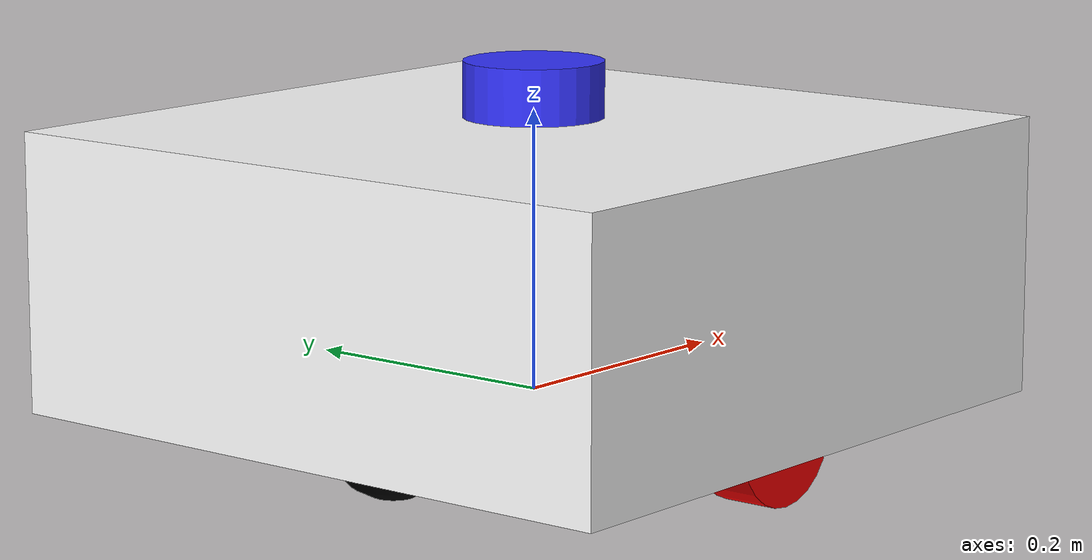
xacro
<?xml version="1.0"?>
<robot xmlns:xacro="http://www.ros.org/wiki/xacro"  name="robot">

    <xacro:arg name="use_ros2_control" default="true"/>
    <xacro:arg name="sim_mode" default="false"/>

    <xacro:include filename="bentuk_robot.xacro" />

    <xacro:if value="$(arg use_ros2_control)">
        <xacro:include filename="ros2_control.xacro" />
    </xacro:if>
    <xacro:unless value="$(arg use_ros2_control)">
        <xacro:include filename="gazebo_control.xacro" />
    </xacro:unless>

    <xacro:include filename="lidar.xacro" />

</robot>

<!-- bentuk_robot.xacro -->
<robot xmlns:xacro="http://www.ros.org/wiki/xacro">

    <xacro:include filename="inertial_macros.xacro"/>

    <xacro:property name="chassis_length" value="0.5"/>
    <xacro:property name="chassis_width" value="0.5"/>
    <xacro:property name="chassis_height" value="0.2"/>
    <xacro:property name="chassis_mass" value="1.0"/>
    <xacro:property name="wheel_radius" value="0.05"/>
    <xacro:property name="wheel_thickness" value="0.04"/>
    <xacro:property name="wheel_mass" value="0.1"/>
    <xacro:property name="wheel_offset_x" value="0.25"/>
    <xacro:property name="wheel_offset_y" value="0.2"/>
    <xacro:property name="wheel_offset_z" value="0.01"/>
    <xacro:property name="caster_wheel_radius" value="0.05"/>
    <xacro:property name="caster_wheel_mass" value="0.01"/>
    <xacro:property name="caster_wheel_f_offset_x" value="0.4"/>
    <xacro:property name="caster_wheel_b_offset_x" value="0.1"/>
    <xacro:property name="caster_wheel_offset_z" value="${wheel_offset_z - wheel_radius + caster_wheel_radius}"/>

    <material name="white">
        <color rgba="1 1 1 1" />
    </material>

    <material name="red">
        <color rgba="1 0 0 1"/>
    </material>

    <material name="blue">
        <color rgba="0.2 0.2 1 1"/>
    </material>

    <material name="black">
        <color rgba="0 0 0 1"/>
    </material>

    <!-- BASE LINK -->

    <link name="base_link">

    </link>

    <!-- BASE_FOOTPRINT LINK -->

    <joint name="base_footprint_joint" type="fixed">
        <parent link="base_link"/>
        <child link="base_footprint"/>
        <origin xyz="0 0 0" rpy="0 0 0"/>
    </joint>

    <link name="base_footprint">
    </link>

    <!-- CHASSIS LINK -->

    <joint name="chassis_joint" type="fixed">
        <parent link="base_link"/>
        <child link="chassis"/>
        <origin xyz="${-wheel_offset_x} 0 ${-wheel_offset_z}"/>
    </joint>

    <link name="chassis">
        <visual>
            <origin xyz="${chassis_length/2} 0 ${chassis_height/2}"/>
            <geometry>
                <box size="${chassis_length} ${chassis_width} ${chassis_height}"/>
            </geometry>
            <material name="white"/>
        </visual>
        <collision>
            <origin xyz="${chassis_length/2} 0 ${chassis_height/2}"/>
            <geometry>
                <box size="${chassis_length} ${chassis_width} ${chassis_height}"/>
            </geometry>
        </collision>
        <xacro:inertial_box mass="0.5" x="${chassis_length}" y="${chassis_width}" z="${chassis_height}" >
            <origin xyz="${chassis_length/2} 0 ${chassis_height/2}" rpy="0 0 0"/>
        </xacro:inertial_box>
    </link>

    <gazebo reference="chassis">
        <material>Gazebo/White</material>
    </gazebo>

    <!-- LEFT WHEEL LINK -->

    <joint name="left_wheel_joint" type="continuous">
        <parent link="base_link"/>
        <child link="left_wheel"/>
        <origin xyz="0 ${wheel_offset_y} 0" rpy="-${pi/2} 0 0" />
        <axis xyz="0 0 1"/>
    </joint>

    <link name="left_wheel">
        <visual>
            <geometry>
                <cylinder radius="${wheel_radius}" length="${wheel_thickness}"/>
            </geometry>
            <material name="red"/>
        </visual>
        <collision>
            <geometry>
                <sphere radius="${wheel_radius}"/>
            </geometry>
        </collision>
        <xacro:inertial_cylinder mass="${wheel_mass}" length="${wheel_thickness}" radius="${wheel_radius}">
            <origin xyz="0 0 0" rpy="0 0 0"/>
        </xacro:inertial_cylinder>
    </link>

    <gazebo reference="left_wheel">
        <material>Gazebo/Red</material>
    </gazebo>

    <!-- RIGHT WHEEL LINK -->

    <joint name="right_wheel_joint" type="continuous">
        <parent link="base_link"/>
        <child link="right_wheel"/>
        <origin xyz="0 ${-wheel_offset_y} 0" rpy="${pi/2} 0 0" />
        <axis xyz="0 0 -1"/>
    </joint>

    <link name="right_wheel">
        <visual>
            <geometry>
                <cylinder radius="${wheel_radius}" length="${wheel_thickness}"/>
            </geometry>
            <material name="red"/>
        </visual>
        <collision>
            <geometry>
                <sphere radius="${wheel_radius}"/>
            </geometry>
        </collision>
        <xacro:inertial_cylinder mass="${wheel_mass}" length="${wheel_thickness}" radius="${wheel_radius}">
            <origin xyz="0 0 0" rpy="0 0 0"/>
        </xacro:inertial_cylinder>
    </link>

    <gazebo reference="right_wheel">
        <material>Gazebo/Red</material>
    </gazebo>

    <!-- CASTER WHEEL F LINK -->

    <joint name="caster_wheel_f_joint" type="fixed">
        <parent link="chassis"/>
        <child link="caster_wheel_f"/>
        <origin xyz="${caster_wheel_f_offset_x} 0 ${caster_wheel_offset_z}"/>
    </joint>

    <link name="caster_wheel_f">
        <visual>
            <geometry>
                <sphere radius="${caster_wheel_radius}"/>
            </geometry>
            <material name="black"/>
        </visual>
        <collision>
            <geometry>
                <sphere radius="${caster_wheel_radius}"/>
            </geometry>
        </collision>
        <xacro:inertial_sphere mass="${caster_wheel_mass}" radius="${caster_wheel_radius}">
            <origin xyz="0 0 0" rpy="0 0 0"/>
        </xacro:inertial_sphere>
    </link>
    <gazebo reference="caster_wheel_f">
        <material>Gazebo/Black</material>
        <mu1 value="0.001"/>
        <mu2 value="0.001"/>
    </gazebo>

    <!-- CASTER WHEEL B LINK -->

    <joint name="caster_wheel_b_joint" type="fixed">
        <parent link="chassis"/>
        <child link="caster_wheel_b"/>
        <origin xyz="${caster_wheel_b_offset_x} 0 ${caster_wheel_offset_z}"/>
    </joint>

    <link name="caster_wheel_b">
        <visual>
            <geometry>
                <sphere radius="${caster_wheel_radius}"/>
            </geometry>
            <material name="black"/>
        </visual>
        <collision>
            <geometry>
                <sphere radius="${caster_wheel_radius}"/>
            </geometry>
        </collision>
        <xacro:inertial_sphere mass="${caster_wheel_mass}" radius="${caster_wheel_radius}">
            <origin xyz="0 0 0" rpy="0 0 0"/>
        </xacro:inertial_sphere>
    </link>
    <gazebo reference="caster_wheel_b">
        <material>Gazebo/Black</material>
        <mu1 value="0.001"/>
        <mu2 value="0.001"/>
    </gazebo>

</robot>

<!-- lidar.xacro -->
<robot xmlns:xacro="http://www.ros.org/wiki/xacro"  name="robot">

    <joint name="laser_joint" type="fixed">
        <parent link="chassis"/>
        <child link="laser_frame"/>
        <origin xyz="0.25 0 0.225" rpy="0 0 0"/>
    </joint>

    <link name="laser_frame">
        <visual>
            <geometry>
                <cylinder radius="0.05" length="0.04"/>
            </geometry>
            <material name="blue"/>
        </visual>
        <collision>
            <geometry>
                <cylinder radius="0.05" length="0.04"/>
            </geometry>
        </collision>
        <xacro:inertial_cylinder mass="0.1" length="0.04" radius="0.05">
            <origin xyz="0 0 0" rpy="0 0 0"/>
        </xacro:inertial_cylinder>
    </link>

    <gazebo reference="laser_frame">
        <material>Gazebo/Blue</material>

        <sensor name="laser" type="ray">
            <pose> 0 0 0 0 0 0 </pose>
            <visualize>true</visualize>
            <update_rate>10</update_rate>
            <ray>
                <scan>
                    <horizontal>
                        <samples>360</samples>
                        <min_angle>-3.14</min_angle>
                        <max_angle>3.14</max_angle>
                    </horizontal>
                </scan>
                <range>
                    <min>0.3</min>
                    <max>12</max>
                </range>
            </ray>
            <plugin name="laser_controller" filename="libgazebo_ros_ray_sensor.so">
                <ros>
                    <argument>~/out:=scan</argument>
                </ros>
                <output_type>sensor_msgs/LaserScan</output_type>
                <frame_name>laser_frame</frame_name>
            </plugin>
        </sensor>
    </gazebo>

</robot>
